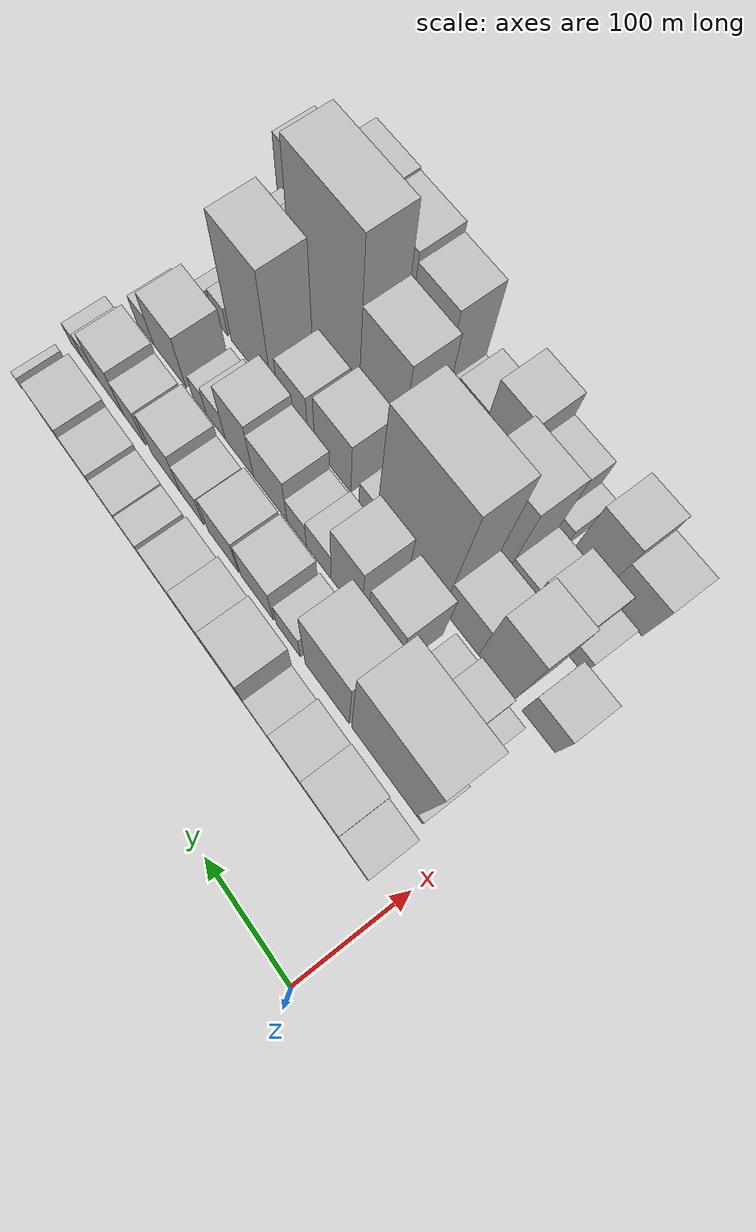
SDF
<sdf version="1.6">
 <world name="default">
  <model name="building_29">
   <static>1</static>
   <pose>100.0000 40.2468 0 0.000000 0.000000 0.000000</pose>
   <link name="link">
    <pose>0 0 30.00 0 0 0</pose>
    <collision name="collision"><geometry><box><size>40.0000 31.6329 60.0000</size></box></geometry></collision>
    <visual name="visual">
     <cast_shadows>0</cast_shadows>
     <geometry><box><size>40.0000 31.6329 60.0000</size></box></geometry>
     <material>
      <script>
       <uri>model://HANNAS_wall/materials/scripts</uri>
       <uri>model://HANNAS_wall/materials/textures</uri>
       <name>vrc/HANNAS_wall</name>
      </script>
     </material>
    </visual>
   </link>
  </model>
  <model name="building_30">
   <static>1</static>
   <pose>100.0000 76.3319 0 0.000000 0.000000 0.000000</pose>
   <link name="link">
    <pose>0 0 37.50 0 0 0</pose>
    <collision name="collision"><geometry><box><size>40.0000 40.5372 75.0000</size></box></geometry></collision>
    <visual name="visual">
     <cast_shadows>0</cast_shadows>
     <geometry><box><size>40.0000 40.5372 75.0000</size></box></geometry>
     <material>
      <script>
       <uri>model://HANNAS_wall/materials/scripts</uri>
       <uri>model://HANNAS_wall/materials/textures</uri>
       <name>vrc/HANNAS_wall</name>
      </script>
     </material>
    </visual>
   </link>
  </model>
  <model name="building_31">
   <static>1</static>
   <pose>100.0000 114.6214 0 0.000000 0.000000 0.000000</pose>
   <link name="link">
    <pose>0 0 34.50 0 0 0</pose>
    <collision name="collision"><geometry><box><size>40.0000 36.0418 69.0000</size></box></geometry></collision>
    <visual name="visual">
     <cast_shadows>0</cast_shadows>
     <geometry><box><size>40.0000 36.0418 69.0000</size></box></geometry>
     <material>
      <script>
       <uri>model://HANNAS_wall/materials/scripts</uri>
       <uri>model://HANNAS_wall/materials/textures</uri>
       <name>vrc/HANNAS_wall</name>
      </script>
     </material>
    </visual>
   </link>
  </model>
  <model name="building_32">
   <static>1</static>
   <pose>100.0000 147.8594 0 0.000000 0.000000 0.000000</pose>
   <link name="link">
    <pose>0 0 25.50 0 0 0</pose>
    <collision name="collision"><geometry><box><size>40.0000 30.4344 51.0000</size></box></geometry></collision>
    <visual name="visual">
     <cast_shadows>0</cast_shadows>
     <geometry><box><size>40.0000 30.4344 51.0000</size></box></geometry>
     <material>
      <script>
       <uri>model://HANNAS_wall/materials/scripts</uri>
       <uri>model://HANNAS_wall/materials/textures</uri>
       <name>vrc/HANNAS_wall</name>
      </script>
     </material>
    </visual>
   </link>
  </model>
  <model name="building_33">
   <static>1</static>
   <pose>100.0000 184.2097 0 0.000000 0.000000 0.000000</pose>
   <link name="link">
    <pose>0 0 54.00 0 0 0</pose>
    <collision name="collision"><geometry><box><size>40.0000 42.2661 108.0000</size></box></geometry></collision>
    <visual name="visual">
     <cast_shadows>0</cast_shadows>
     <geometry><box><size>40.0000 42.2661 108.0000</size></box></geometry>
     <material>
      <script>
       <uri>model://HANNAS_wall/materials/scripts</uri>
       <uri>model://HANNAS_wall/materials/textures</uri>
       <name>vrc/HANNAS_wall</name>
      </script>
     </material>
    </visual>
   </link>
  </model>
  <model name="building_34">
   <static>1</static>
   <pose>100.0000 223.7622 0 0.000000 0.000000 0.000000</pose>
   <link name="link">
    <pose>0 0 46.50 0 0 0</pose>
    <collision name="collision"><geometry><box><size>40.0000 36.8390 93.0000</size></box></geometry></collision>
    <visual name="visual">
     <cast_shadows>0</cast_shadows>
     <geometry><box><size>40.0000 36.8390 93.0000</size></box></geometry>
     <material>
      <script>
       <uri>model://HANNAS_wall/materials/scripts</uri>
       <uri>model://HANNAS_wall/materials/textures</uri>
       <name>vrc/HANNAS_wall</name>
      </script>
     </material>
    </visual>
   </link>
  </model>
  <model name="building_35">
   <static>1</static>
   <pose>100.0000 263.3432 0 0.000000 0.000000 0.000000</pose>
   <link name="link">
    <pose>0 0 36.00 0 0 0</pose>
    <collision name="collision"><geometry><box><size>40.0000 42.3230 72.0000</size></box></geometry></collision>
    <visual name="visual">
     <cast_shadows>0</cast_shadows>
     <geometry><box><size>40.0000 42.3230 72.0000</size></box></geometry>
     <material>
      <script>
       <uri>model://HANNAS_wall/materials/scripts</uri>
       <uri>model://HANNAS_wall/materials/textures</uri>
       <name>vrc/HANNAS_wall</name>
      </script>
     </material>
    </visual>
   </link>
  </model>
  <model name="building_36">
   <static>1</static>
   <pose>100.0000 289.1036 0 0.000000 0.000000 0.000000</pose>
   <link name="link">
    <pose>0 0 10.50 0 0 0</pose>
    <collision name="collision"><geometry><box><size>40.0000 9.1977 21.0000</size></box></geometry></collision>
    <visual name="visual">
     <cast_shadows>0</cast_shadows>
     <geometry><box><size>40.0000 9.1977 21.0000</size></box></geometry>
     <material>
      <script>
       <uri>model://HANNAS_wall/materials/scripts</uri>
       <uri>model://HANNAS_wall/materials/textures</uri>
       <name>vrc/HANNAS_wall</name>
      </script>
     </material>
    </visual>
   </link>
  </model>
  <model name="building_37">
   <static>1</static>
   <pose>100.0000 307.2518 0 0.000000 0.000000 0.000000</pose>
   <link name="link">
    <pose>0 0 27.00 0 0 0</pose>
    <collision name="collision"><geometry><box><size>40.0000 27.0988 54.0000</size></box></geometry></collision>
    <visual name="visual">
     <cast_shadows>0</cast_shadows>
     <geometry><box><size>40.0000 27.0988 54.0000</size></box></geometry>
     <material>
      <script>
       <uri>model://HANNAS_wall/materials/scripts</uri>
       <uri>model://HANNAS_wall/materials/textures</uri>
       <name>vrc/HANNAS_wall</name>
      </script>
     </material>
    </visual>
   </link>
  </model>
  <model name="building_38">
   <static>1</static>
   <pose>100.0000 336.7507 0 0.000000 0.000000 0.000000</pose>
   <link name="link">
    <pose>0 0 28.50 0 0 0</pose>
    <collision name="collision"><geometry><box><size>40.0000 31.8990 57.0000</size></box></geometry></collision>
    <visual name="visual">
     <cast_shadows>0</cast_shadows>
     <geometry><box><size>40.0000 31.8990 57.0000</size></box></geometry>
     <material>
      <script>
       <uri>model://HANNAS_wall/materials/scripts</uri>
       <uri>model://HANNAS_wall/materials/textures</uri>
       <name>vrc/HANNAS_wall</name>
      </script>
     </material>
    </visual>
   </link>
  </model>
  <model name="building_39">
   <static>1</static>
   <pose>100.0000 370.7542 0 0.000000 0.000000 0.000000</pose>
   <link name="link">
    <pose>0 0 33.00 0 0 0</pose>
    <collision name="collision"><geometry><box><size>40.0000 36.1079 66.0000</size></box></geometry></collision>
    <visual name="visual">
     <cast_shadows>0</cast_shadows>
     <geometry><box><size>40.0000 36.1079 66.0000</size></box></geometry>
     <material>
      <script>
       <uri>model://HANNAS_wall/materials/scripts</uri>
       <uri>model://HANNAS_wall/materials/textures</uri>
       <name>vrc/HANNAS_wall</name>
      </script>
     </material>
    </visual>
   </link>
  </model>
  <model name="building_40">
   <static>1</static>
   <pose>100.0000 410.9158 0 0.000000 0.000000 0.000000</pose>
   <link name="link">
    <pose>0 0 39.00 0 0 0</pose>
    <collision name="collision"><geometry><box><size>40.0000 44.2153 78.0000</size></box></geometry></collision>
    <visual name="visual">
     <cast_shadows>0</cast_shadows>
     <geometry><box><size>40.0000 44.2153 78.0000</size></box></geometry>
     <material>
      <script>
       <uri>model://HANNAS_wall/materials/scripts</uri>
       <uri>model://HANNAS_wall/materials/textures</uri>
       <name>vrc/HANNAS_wall</name>
      </script>
     </material>
    </visual>
   </link>
  </model>
  <model name="building_41">
   <static>1</static>
   <pose>100.0000 477.3206 0 0.000000 0.000000 0.000000</pose>
   <link name="link">
    <pose>0 0 9.00 0 0 0</pose>
    <collision name="collision"><geometry><box><size>40.0000 7.5315 18.0000</size></box></geometry></collision>
    <visual name="visual">
     <cast_shadows>0</cast_shadows>
     <geometry><box><size>40.0000 7.5315 18.0000</size></box></geometry>
     <material>
      <script>
       <uri>model://HANNAS_wall/materials/scripts</uri>
       <uri>model://HANNAS_wall/materials/textures</uri>
       <name>vrc/HANNAS_wall</name>
      </script>
     </material>
    </visual>
   </link>
  </model>
  <model name="building_77">
   <static>1</static>
   <pose>152.0000 33.0837 0 0.000000 0.000000 0.000000</pose>
   <link name="link">
    <pose>0 0 7.50 0 0 0</pose>
    <collision name="collision"><geometry><box><size>40.0000 6.6672 15.0000</size></box></geometry></collision>
    <visual name="visual">
     <cast_shadows>0</cast_shadows>
     <geometry><box><size>40.0000 6.6672 15.0000</size></box></geometry>
     <material>
      <script>
       <uri>model://HANNAS_wall/materials/scripts</uri>
       <uri>model://HANNAS_wall/materials/textures</uri>
       <name>vrc/HANNAS_wall</name>
      </script>
     </material>
    </visual>
   </link>
  </model>
  <model name="building_78">
   <static>1</static>
   <pose>152.0000 73.7031 0 0.000000 0.000000 0.000000</pose>
   <link name="link">
    <pose>0 0 103.50 0 0 0</pose>
    <collision name="collision"><geometry><box><size>40.0000 74.5717 207.0000</size></box></geometry></collision>
    <visual name="visual">
     <cast_shadows>0</cast_shadows>
     <geometry><box><size>40.0000 74.5717 207.0000</size></box></geometry>
     <material>
      <script>
       <uri>model://HANNAS_wall/materials/scripts</uri>
       <uri>model://HANNAS_wall/materials/textures</uri>
       <name>vrc/HANNAS_wall</name>
      </script>
     </material>
    </visual>
   </link>
  </model>
  <model name="building_79">
   <static>1</static>
   <pose>152.0000 140.3286 0 0.000000 0.000000 0.000000</pose>
   <link name="link">
    <pose>0 0 75.00 0 0 0</pose>
    <collision name="collision"><geometry><box><size>40.0000 52.6793 150.0000</size></box></geometry></collision>
    <visual name="visual">
     <cast_shadows>0</cast_shadows>
     <geometry><box><size>40.0000 52.6793 150.0000</size></box></geometry>
     <material>
      <script>
       <uri>model://HANNAS_wall/materials/scripts</uri>
       <uri>model://HANNAS_wall/materials/textures</uri>
       <name>vrc/HANNAS_wall</name>
      </script>
     </material>
    </visual>
   </link>
  </model>
  <model name="building_80">
   <static>1</static>
   <pose>152.0000 187.3229 0 0.000000 0.000000 0.000000</pose>
   <link name="link">
    <pose>0 0 28.50 0 0 0</pose>
    <collision name="collision"><geometry><box><size>40.0000 29.3093 57.0000</size></box></geometry></collision>
    <visual name="visual">
     <cast_shadows>0</cast_shadows>
     <geometry><box><size>40.0000 29.3093 57.0000</size></box></geometry>
     <material>
      <script>
       <uri>model://HANNAS_wall/materials/scripts</uri>
       <uri>model://HANNAS_wall/materials/textures</uri>
       <name>vrc/HANNAS_wall</name>
      </script>
     </material>
    </visual>
   </link>
  </model>
  <model name="building_81">
   <static>1</static>
   <pose>152.0000 226.6358 0 0.000000 0.000000 0.000000</pose>
   <link name="link">
    <pose>0 0 37.50 0 0 0</pose>
    <collision name="collision"><geometry><box><size>40.0000 41.3163 75.0000</size></box></geometry></collision>
    <visual name="visual">
     <cast_shadows>0</cast_shadows>
     <geometry><box><size>40.0000 41.3163 75.0000</size></box></geometry>
     <material>
      <script>
       <uri>model://HANNAS_wall/materials/scripts</uri>
       <uri>model://HANNAS_wall/materials/textures</uri>
       <name>vrc/HANNAS_wall</name>
      </script>
     </material>
    </visual>
   </link>
  </model>
  <model name="building_82">
   <static>1</static>
   <pose>152.0000 270.3311 0 0.000000 0.000000 0.000000</pose>
   <link name="link">
    <pose>0 0 36.00 0 0 0</pose>
    <collision name="collision"><geometry><box><size>40.0000 40.0743 72.0000</size></box></geometry></collision>
    <visual name="visual">
     <cast_shadows>0</cast_shadows>
     <geometry><box><size>40.0000 40.0743 72.0000</size></box></geometry>
     <material>
      <script>
       <uri>model://HANNAS_wall/materials/scripts</uri>
       <uri>model://HANNAS_wall/materials/textures</uri>
       <name>vrc/HANNAS_wall</name>
      </script>
     </material>
    </visual>
   </link>
  </model>
  <model name="building_83">
   <static>1</static>
   <pose>152.0000 311.8385 0 0.000000 0.000000 0.000000</pose>
   <link name="link">
    <pose>0 0 28.50 0 0 0</pose>
    <collision name="collision"><geometry><box><size>40.0000 30.9406 57.0000</size></box></geometry></collision>
    <visual name="visual">
     <cast_shadows>0</cast_shadows>
     <geometry><box><size>40.0000 30.9406 57.0000</size></box></geometry>
     <material>
      <script>
       <uri>model://HANNAS_wall/materials/scripts</uri>
       <uri>model://HANNAS_wall/materials/textures</uri>
       <name>vrc/HANNAS_wall</name>
      </script>
     </material>
    </visual>
   </link>
  </model>
  <model name="building_84">
   <static>1</static>
   <pose>152.0000 347.2280 0 0.000000 0.000000 0.000000</pose>
   <link name="link">
    <pose>0 0 37.50 0 0 0</pose>
    <collision name="collision"><geometry><box><size>40.0000 39.8383 75.0000</size></box></geometry></collision>
    <visual name="visual">
     <cast_shadows>0</cast_shadows>
     <geometry><box><size>40.0000 39.8383 75.0000</size></box></geometry>
     <material>
      <script>
       <uri>model://HANNAS_wall/materials/scripts</uri>
       <uri>model://HANNAS_wall/materials/textures</uri>
       <name>vrc/HANNAS_wall</name>
      </script>
     </material>
    </visual>
   </link>
  </model>
  <model name="building_85">
   <static>1</static>
   <pose>152.0000 391.4638 0 0.000000 0.000000 0.000000</pose>
   <link name="link">
    <pose>0 0 30.00 0 0 0</pose>
    <collision name="collision"><geometry><box><size>40.0000 30.6335 60.0000</size></box></geometry></collision>
    <visual name="visual">
     <cast_shadows>0</cast_shadows>
     <geometry><box><size>40.0000 30.6335 60.0000</size></box></geometry>
     <material>
      <script>
       <uri>model://HANNAS_wall/materials/scripts</uri>
       <uri>model://HANNAS_wall/materials/textures</uri>
       <name>vrc/HANNAS_wall</name>
      </script>
     </material>
    </visual>
   </link>
  </model>
  <model name="building_86">
   <static>1</static>
   <pose>152.0000 426.1451 0 0.000000 0.000000 0.000000</pose>
   <link name="link">
    <pose>0 0 37.50 0 0 0</pose>
    <collision name="collision"><geometry><box><size>40.0000 38.7290 75.0000</size></box></geometry></collision>
    <visual name="visual">
     <cast_shadows>0</cast_shadows>
     <geometry><box><size>40.0000 38.7290 75.0000</size></box></geometry>
     <material>
      <script>
       <uri>model://HANNAS_wall/materials/scripts</uri>
       <uri>model://HANNAS_wall/materials/textures</uri>
       <name>vrc/HANNAS_wall</name>
      </script>
     </material>
    </visual>
   </link>
  </model>
  <model name="building_87">
   <static>1</static>
   <pose>152.0000 456.1907 0 0.000000 0.000000 0.000000</pose>
   <link name="link">
    <pose>0 0 21.00 0 0 0</pose>
    <collision name="collision"><geometry><box><size>40.0000 21.3623 42.0000</size></box></geometry></collision>
    <visual name="visual">
     <cast_shadows>0</cast_shadows>
     <geometry><box><size>40.0000 21.3623 42.0000</size></box></geometry>
     <material>
      <script>
       <uri>model://HANNAS_wall/materials/scripts</uri>
       <uri>model://HANNAS_wall/materials/textures</uri>
       <name>vrc/HANNAS_wall</name>
      </script>
     </material>
    </visual>
   </link>
  </model>
  <model name="building_88">
   <static>1</static>
   <pose>152.0000 475.7826 0 0.000000 0.000000 0.000000</pose>
   <link name="link">
    <pose>0 0 16.50 0 0 0</pose>
    <collision name="collision"><geometry><box><size>40.0000 17.8215 33.0000</size></box></geometry></collision>
    <visual name="visual">
     <cast_shadows>0</cast_shadows>
     <geometry><box><size>40.0000 17.8215 33.0000</size></box></geometry>
     <material>
      <script>
       <uri>model://HANNAS_wall/materials/scripts</uri>
       <uri>model://HANNAS_wall/materials/textures</uri>
       <name>vrc/HANNAS_wall</name>
      </script>
     </material>
    </visual>
   </link>
  </model>
  <model name="building_124">
   <static>1</static>
   <pose>204.0000 46.8341 0 0.000000 0.000000 0.000000</pose>
   <link name="link">
    <pose>0 0 15.00 0 0 0</pose>
    <collision name="collision"><geometry><box><size>40.0000 17.7865 30.0000</size></box></geometry></collision>
    <visual name="visual">
     <cast_shadows>0</cast_shadows>
     <geometry><box><size>40.0000 17.7865 30.0000</size></box></geometry>
     <material>
      <script>
       <uri>model://HANNAS_wall/materials/scripts</uri>
       <uri>model://HANNAS_wall/materials/textures</uri>
       <name>vrc/HANNAS_wall</name>
      </script>
     </material>
    </visual>
   </link>
  </model>
  <model name="building_125">
   <static>1</static>
   <pose>204.0000 73.4161 0 0.000000 0.000000 0.000000</pose>
   <link name="link">
    <pose>0 0 30.00 0 0 0</pose>
    <collision name="collision"><geometry><box><size>40.0000 35.3775 60.0000</size></box></geometry></collision>
    <visual name="visual">
     <cast_shadows>0</cast_shadows>
     <geometry><box><size>40.0000 35.3775 60.0000</size></box></geometry>
     <material>
      <script>
       <uri>model://HANNAS_wall/materials/scripts</uri>
       <uri>model://HANNAS_wall/materials/textures</uri>
       <name>vrc/HANNAS_wall</name>
      </script>
     </material>
    </visual>
   </link>
  </model>
  <model name="building_126">
   <static>1</static>
   <pose>204.0000 103.3970 0 0.000000 0.000000 0.000000</pose>
   <link name="link">
    <pose>0 0 21.00 0 0 0</pose>
    <collision name="collision"><geometry><box><size>40.0000 24.5842 42.0000</size></box></geometry></collision>
    <visual name="visual">
     <cast_shadows>0</cast_shadows>
     <geometry><box><size>40.0000 24.5842 42.0000</size></box></geometry>
     <material>
      <script>
       <uri>model://HANNAS_wall/materials/scripts</uri>
       <uri>model://HANNAS_wall/materials/textures</uri>
       <name>vrc/HANNAS_wall</name>
      </script>
     </material>
    </visual>
   </link>
  </model>
  <model name="building_127">
   <static>1</static>
   <pose>204.0000 143.6898 0 0.000000 0.000000 0.000000</pose>
   <link name="link">
    <pose>0 0 52.50 0 0 0</pose>
    <collision name="collision"><geometry><box><size>40.0000 38.0013 105.0000</size></box></geometry></collision>
    <visual name="visual">
     <cast_shadows>0</cast_shadows>
     <geometry><box><size>40.0000 38.0013 105.0000</size></box></geometry>
     <material>
      <script>
       <uri>model://HANNAS_wall/materials/scripts</uri>
       <uri>model://HANNAS_wall/materials/textures</uri>
       <name>vrc/HANNAS_wall</name>
      </script>
     </material>
    </visual>
   </link>
  </model>
  <model name="building_128">
   <static>1</static>
   <pose>204.0000 187.9292 0 0.000000 0.000000 0.000000</pose>
   <link name="link">
    <pose>0 0 60.00 0 0 0</pose>
    <collision name="collision"><geometry><box><size>40.0000 36.4775 120.0000</size></box></geometry></collision>
    <visual name="visual">
     <cast_shadows>0</cast_shadows>
     <geometry><box><size>40.0000 36.4775 120.0000</size></box></geometry>
     <material>
      <script>
       <uri>model://HANNAS_wall/materials/scripts</uri>
       <uri>model://HANNAS_wall/materials/textures</uri>
       <name>vrc/HANNAS_wall</name>
      </script>
     </material>
    </visual>
   </link>
  </model>
  <model name="building_129">
   <static>1</static>
   <pose>204.0000 221.6632 0 0.000000 0.000000 0.000000</pose>
   <link name="link">
    <pose>0 0 28.50 0 0 0</pose>
    <collision name="collision"><geometry><box><size>40.0000 30.9905 57.0000</size></box></geometry></collision>
    <visual name="visual">
     <cast_shadows>0</cast_shadows>
     <geometry><box><size>40.0000 30.9905 57.0000</size></box></geometry>
     <material>
      <script>
       <uri>model://HANNAS_wall/materials/scripts</uri>
       <uri>model://HANNAS_wall/materials/textures</uri>
       <name>vrc/HANNAS_wall</name>
      </script>
     </material>
    </visual>
   </link>
  </model>
  <model name="building_130">
   <static>1</static>
   <pose>204.0000 249.5951 0 0.000000 0.000000 0.000000</pose>
   <link name="link">
    <pose>0 0 24.00 0 0 0</pose>
    <collision name="collision"><geometry><box><size>40.0000 24.8734 48.0000</size></box></geometry></collision>
    <visual name="visual">
     <cast_shadows>0</cast_shadows>
     <geometry><box><size>40.0000 24.8734 48.0000</size></box></geometry>
     <material>
      <script>
       <uri>model://HANNAS_wall/materials/scripts</uri>
       <uri>model://HANNAS_wall/materials/textures</uri>
       <name>vrc/HANNAS_wall</name>
      </script>
     </material>
    </visual>
   </link>
  </model>
  <model name="building_131">
   <static>1</static>
   <pose>204.0000 283.9819 0 0.000000 0.000000 0.000000</pose>
   <link name="link">
    <pose>0 0 40.50 0 0 0</pose>
    <collision name="collision"><geometry><box><size>40.0000 43.9001 81.0000</size></box></geometry></collision>
    <visual name="visual">
     <cast_shadows>0</cast_shadows>
     <geometry><box><size>40.0000 43.9001 81.0000</size></box></geometry>
     <material>
      <script>
       <uri>model://HANNAS_wall/materials/scripts</uri>
       <uri>model://HANNAS_wall/materials/textures</uri>
       <name>vrc/HANNAS_wall</name>
      </script>
     </material>
    </visual>
   </link>
  </model>
  <model name="building_132">
   <static>1</static>
   <pose>204.0000 324.8077 0 0.000000 0.000000 0.000000</pose>
   <link name="link">
    <pose>0 0 48.00 0 0 0</pose>
    <collision name="collision"><geometry><box><size>40.0000 37.7515 96.0000</size></box></geometry></collision>
    <visual name="visual">
     <cast_shadows>0</cast_shadows>
     <geometry><box><size>40.0000 37.7515 96.0000</size></box></geometry>
     <material>
      <script>
       <uri>model://HANNAS_wall/materials/scripts</uri>
       <uri>model://HANNAS_wall/materials/textures</uri>
       <name>vrc/HANNAS_wall</name>
      </script>
     </material>
    </visual>
   </link>
  </model>
  <model name="building_133">
   <static>1</static>
   <pose>204.0000 356.7998 0 0.000000 0.000000 0.000000</pose>
   <link name="link">
    <pose>0 0 24.00 0 0 0</pose>
    <collision name="collision"><geometry><box><size>40.0000 26.2327 48.0000</size></box></geometry></collision>
    <visual name="visual">
     <cast_shadows>0</cast_shadows>
     <geometry><box><size>40.0000 26.2327 48.0000</size></box></geometry>
     <material>
      <script>
       <uri>model://HANNAS_wall/materials/scripts</uri>
       <uri>model://HANNAS_wall/materials/textures</uri>
       <name>vrc/HANNAS_wall</name>
      </script>
     </material>
    </visual>
   </link>
  </model>
  <model name="building_134">
   <static>1</static>
   <pose>204.0000 379.4706 0 0.000000 0.000000 0.000000</pose>
   <link name="link">
    <pose>0 0 18.00 0 0 0</pose>
    <collision name="collision"><geometry><box><size>40.0000 19.1090 36.0000</size></box></geometry></collision>
    <visual name="visual">
     <cast_shadows>0</cast_shadows>
     <geometry><box><size>40.0000 19.1090 36.0000</size></box></geometry>
     <material>
      <script>
       <uri>model://HANNAS_wall/materials/scripts</uri>
       <uri>model://HANNAS_wall/materials/textures</uri>
       <name>vrc/HANNAS_wall</name>
      </script>
     </material>
    </visual>
   </link>
  </model>
  <model name="building_135">
   <static>1</static>
   <pose>204.0000 421.2798 0 0.000000 0.000000 0.000000</pose>
   <link name="link">
    <pose>0 0 40.50 0 0 0</pose>
    <collision name="collision"><geometry><box><size>40.0000 46.5094 81.0000</size></box></geometry></collision>
    <visual name="visual">
     <cast_shadows>0</cast_shadows>
     <geometry><box><size>40.0000 46.5094 81.0000</size></box></geometry>
     <material>
      <script>
       <uri>model://HANNAS_wall/materials/scripts</uri>
       <uri>model://HANNAS_wall/materials/textures</uri>
       <name>vrc/HANNAS_wall</name>
      </script>
     </material>
    </visual>
   </link>
  </model>
  <model name="building_136">
   <static>1</static>
   <pose>204.0000 456.9595 0 0.000000 0.000000 0.000000</pose>
   <link name="link">
    <pose>0 0 21.00 0 0 0</pose>
    <collision name="collision"><geometry><box><size>40.0000 24.8499 42.0000</size></box></geometry></collision>
    <visual name="visual">
     <cast_shadows>0</cast_shadows>
     <geometry><box><size>40.0000 24.8499 42.0000</size></box></geometry>
     <material>
      <script>
       <uri>model://HANNAS_wall/materials/scripts</uri>
       <uri>model://HANNAS_wall/materials/textures</uri>
       <name>vrc/HANNAS_wall</name>
      </script>
     </material>
    </visual>
   </link>
  </model>
  <model name="building_170">
   <static>1</static>
   <pose>256.0000 30.5510 0 0.000000 0.000000 0.000000</pose>
   <link name="link">
    <pose>0 0 31.50 0 0 0</pose>
    <collision name="collision"><geometry><box><size>40.0000 36.4296 63.0000</size></box></geometry></collision>
    <visual name="visual">
     <cast_shadows>0</cast_shadows>
     <geometry><box><size>40.0000 36.4296 63.0000</size></box></geometry>
     <material>
      <script>
       <uri>model://HANNAS_wall/materials/scripts</uri>
       <uri>model://HANNAS_wall/materials/textures</uri>
       <name>vrc/HANNAS_wall</name>
      </script>
     </material>
    </visual>
   </link>
  </model>
  <model name="building_171">
   <static>1</static>
   <pose>256.0000 77.8246 0 0.000000 0.000000 0.000000</pose>
   <link name="link">
    <pose>0 0 64.50 0 0 0</pose>
    <collision name="collision"><geometry><box><size>40.0000 40.1176 129.0000</size></box></geometry></collision>
    <visual name="visual">
     <cast_shadows>0</cast_shadows>
     <geometry><box><size>40.0000 40.1176 129.0000</size></box></geometry>
     <material>
      <script>
       <uri>model://HANNAS_wall/materials/scripts</uri>
       <uri>model://HANNAS_wall/materials/textures</uri>
       <name>vrc/HANNAS_wall</name>
      </script>
     </material>
    </visual>
   </link>
  </model>
  <model name="building_172">
   <static>1</static>
   <pose>256.0000 118.3505 0 0.000000 0.000000 0.000000</pose>
   <link name="link">
    <pose>0 0 37.50 0 0 0</pose>
    <collision name="collision"><geometry><box><size>40.0000 40.9343 75.0000</size></box></geometry></collision>
    <visual name="visual">
     <cast_shadows>0</cast_shadows>
     <geometry><box><size>40.0000 40.9343 75.0000</size></box></geometry>
     <material>
      <script>
       <uri>model://HANNAS_wall/materials/scripts</uri>
       <uri>model://HANNAS_wall/materials/textures</uri>
       <name>vrc/HANNAS_wall</name>
      </script>
     </material>
    </visual>
   </link>
  </model>
  <model name="building_173">
   <static>1</static>
   <pose>256.0000 179.6236 0 0.000000 0.000000 0.000000</pose>
   <link name="link">
    <pose>0 0 109.50 0 0 0</pose>
    <collision name="collision"><geometry><box><size>40.0000 81.6119 219.0000</size></box></geometry></collision>
    <visual name="visual">
     <cast_shadows>0</cast_shadows>
     <geometry><box><size>40.0000 81.6119 219.0000</size></box></geometry>
     <material>
      <script>
       <uri>model://HANNAS_wall/materials/scripts</uri>
       <uri>model://HANNAS_wall/materials/textures</uri>
       <name>vrc/HANNAS_wall</name>
      </script>
     </material>
    </visual>
   </link>
  </model>
  <model name="building_174">
   <static>1</static>
   <pose>256.0000 231.1849 0 0.000000 0.000000 0.000000</pose>
   <link name="link">
    <pose>0 0 21.00 0 0 0</pose>
    <collision name="collision"><geometry><box><size>40.0000 21.5108 42.0000</size></box></geometry></collision>
    <visual name="visual">
     <cast_shadows>0</cast_shadows>
     <geometry><box><size>40.0000 21.5108 42.0000</size></box></geometry>
     <material>
      <script>
       <uri>model://HANNAS_wall/materials/scripts</uri>
       <uri>model://HANNAS_wall/materials/textures</uri>
       <name>vrc/HANNAS_wall</name>
      </script>
     </material>
    </visual>
   </link>
  </model>
  <model name="building_175">
   <static>1</static>
   <pose>256.0000 275.0761 0 0.000000 0.000000 0.000000</pose>
   <link name="link">
    <pose>0 0 45.00 0 0 0</pose>
    <collision name="collision"><geometry><box><size>40.0000 46.2716 90.0000</size></box></geometry></collision>
    <visual name="visual">
     <cast_shadows>0</cast_shadows>
     <geometry><box><size>40.0000 46.2716 90.0000</size></box></geometry>
     <material>
      <script>
       <uri>model://HANNAS_wall/materials/scripts</uri>
       <uri>model://HANNAS_wall/materials/textures</uri>
       <name>vrc/HANNAS_wall</name>
      </script>
     </material>
    </visual>
   </link>
  </model>
  <model name="building_176">
   <static>1</static>
   <pose>256.0000 326.7029 0 0.000000 0.000000 0.000000</pose>
   <link name="link">
    <pose>0 0 36.00 0 0 0</pose>
    <collision name="collision"><geometry><box><size>40.0000 38.9820 72.0000</size></box></geometry></collision>
    <visual name="visual">
     <cast_shadows>0</cast_shadows>
     <geometry><box><size>40.0000 38.9820 72.0000</size></box></geometry>
     <material>
      <script>
       <uri>model://HANNAS_wall/materials/scripts</uri>
       <uri>model://HANNAS_wall/materials/textures</uri>
       <name>vrc/HANNAS_wall</name>
      </script>
     </material>
    </visual>
   </link>
  </model>
  <model name="building_177">
   <static>1</static>
   <pose>256.0000 383.2286 0 0.000000 0.000000 0.000000</pose>
   <link name="link">
    <pose>0 0 88.50 0 0 0</pose>
    <collision name="collision"><geometry><box><size>40.0000 56.0694 177.0000</size></box></geometry></collision>
    <visual name="visual">
     <cast_shadows>0</cast_shadows>
     <geometry><box><size>40.0000 56.0694 177.0000</size></box></geometry>
     <material>
      <script>
       <uri>model://HANNAS_wall/materials/scripts</uri>
       <uri>model://HANNAS_wall/materials/textures</uri>
       <name>vrc/HANNAS_wall</name>
      </script>
     </material>
    </visual>
   </link>
  </model>
  <model name="building_178">
   <static>1</static>
   <pose>256.0000 427.2331 0 0.000000 0.000000 0.000000</pose>
   <link name="link">
    <pose>0 0 21.00 0 0 0</pose>
    <collision name="collision"><geometry><box><size>40.0000 21.9396 42.0000</size></box></geometry></collision>
    <visual name="visual">
     <cast_shadows>0</cast_shadows>
     <geometry><box><size>40.0000 21.9396 42.0000</size></box></geometry>
     <material>
      <script>
       <uri>model://HANNAS_wall/materials/scripts</uri>
       <uri>model://HANNAS_wall/materials/textures</uri>
       <name>vrc/HANNAS_wall</name>
      </script>
     </material>
    </visual>
   </link>
  </model>
  <model name="building_179">
   <static>1</static>
   <pose>256.0000 441.8886 0 0.000000 0.000000 0.000000</pose>
   <link name="link">
    <pose>0 0 9.00 0 0 0</pose>
    <collision name="collision"><geometry><box><size>40.0000 7.3712 18.0000</size></box></geometry></collision>
    <visual name="visual">
     <cast_shadows>0</cast_shadows>
     <geometry><box><size>40.0000 7.3712 18.0000</size></box></geometry>
     <material>
      <script>
       <uri>model://HANNAS_wall/materials/scripts</uri>
       <uri>model://HANNAS_wall/materials/textures</uri>
       <name>vrc/HANNAS_wall</name>
      </script>
     </material>
    </visual>
   </link>
  </model>
  <model name="building_180">
   <static>1</static>
   <pose>256.0000 452.0042 0 0.000000 0.000000 0.000000</pose>
   <link name="link">
    <pose>0 0 13.50 0 0 0</pose>
    <collision name="collision"><geometry><box><size>40.0000 12.8602 27.0000</size></box></geometry></collision>
    <visual name="visual">
     <cast_shadows>0</cast_shadows>
     <geometry><box><size>40.0000 12.8602 27.0000</size></box></geometry>
     <material>
      <script>
       <uri>model://HANNAS_wall/materials/scripts</uri>
       <uri>model://HANNAS_wall/materials/textures</uri>
       <name>vrc/HANNAS_wall</name>
      </script>
     </material>
    </visual>
   </link>
  </model>
  <model name="building_216">
   <static>1</static>
   <pose>308.0000 51.8596 0 0.000000 0.000000 0.000000</pose>
   <link name="link">
    <pose>0 0 18.00 0 0 0</pose>
    <collision name="collision"><geometry><box><size>40.0000 18.5583 36.0000</size></box></geometry></collision>
    <visual name="visual">
     <cast_shadows>0</cast_shadows>
     <geometry><box><size>40.0000 18.5583 36.0000</size></box></geometry>
     <material>
      <script>
       <uri>model://HANNAS_wall/materials/scripts</uri>
       <uri>model://HANNAS_wall/materials/textures</uri>
       <name>vrc/HANNAS_wall</name>
      </script>
     </material>
    </visual>
   </link>
  </model>
  <model name="building_217">
   <static>1</static>
   <pose>308.0000 82.4588 0 0.000000 0.000000 0.000000</pose>
   <link name="link">
    <pose>0 0 36.00 0 0 0</pose>
    <collision name="collision"><geometry><box><size>40.0000 42.6401 72.0000</size></box></geometry></collision>
    <visual name="visual">
     <cast_shadows>0</cast_shadows>
     <geometry><box><size>40.0000 42.6401 72.0000</size></box></geometry>
     <material>
      <script>
       <uri>model://HANNAS_wall/materials/scripts</uri>
       <uri>model://HANNAS_wall/materials/textures</uri>
       <name>vrc/HANNAS_wall</name>
      </script>
     </material>
    </visual>
   </link>
  </model>
  <model name="building_218">
   <static>1</static>
   <pose>308.0000 117.6793 0 0.000000 0.000000 0.000000</pose>
   <link name="link">
    <pose>0 0 24.00 0 0 0</pose>
    <collision name="collision"><geometry><box><size>40.0000 27.8010 48.0000</size></box></geometry></collision>
    <visual name="visual">
     <cast_shadows>0</cast_shadows>
     <geometry><box><size>40.0000 27.8010 48.0000</size></box></geometry>
     <material>
      <script>
       <uri>model://HANNAS_wall/materials/scripts</uri>
       <uri>model://HANNAS_wall/materials/textures</uri>
       <name>vrc/HANNAS_wall</name>
      </script>
     </material>
    </visual>
   </link>
  </model>
  <model name="building_219">
   <static>1</static>
   <pose>308.0000 158.0275 0 0.000000 0.000000 0.000000</pose>
   <link name="link">
    <pose>0 0 72.00 0 0 0</pose>
    <collision name="collision"><geometry><box><size>40.0000 52.8954 144.0000</size></box></geometry></collision>
    <visual name="visual">
     <cast_shadows>0</cast_shadows>
     <geometry><box><size>40.0000 52.8954 144.0000</size></box></geometry>
     <material>
      <script>
       <uri>model://HANNAS_wall/materials/scripts</uri>
       <uri>model://HANNAS_wall/materials/textures</uri>
       <name>vrc/HANNAS_wall</name>
      </script>
     </material>
    </visual>
   </link>
  </model>
  <model name="building_220">
   <static>1</static>
   <pose>308.0000 191.2032 0 0.000000 0.000000 0.000000</pose>
   <link name="link">
    <pose>0 0 13.50 0 0 0</pose>
    <collision name="collision"><geometry><box><size>40.0000 13.4560 27.0000</size></box></geometry></collision>
    <visual name="visual">
     <cast_shadows>0</cast_shadows>
     <geometry><box><size>40.0000 13.4560 27.0000</size></box></geometry>
     <material>
      <script>
       <uri>model://HANNAS_wall/materials/scripts</uri>
       <uri>model://HANNAS_wall/materials/textures</uri>
       <name>vrc/HANNAS_wall</name>
      </script>
     </material>
    </visual>
   </link>
  </model>
  <model name="building_221">
   <static>1</static>
   <pose>308.0000 211.7862 0 0.000000 0.000000 0.000000</pose>
   <link name="link">
    <pose>0 0 13.50 0 0 0</pose>
    <collision name="collision"><geometry><box><size>40.0000 11.7100 27.0000</size></box></geometry></collision>
    <visual name="visual">
     <cast_shadows>0</cast_shadows>
     <geometry><box><size>40.0000 11.7100 27.0000</size></box></geometry>
     <material>
      <script>
       <uri>model://HANNAS_wall/materials/scripts</uri>
       <uri>model://HANNAS_wall/materials/textures</uri>
       <name>vrc/HANNAS_wall</name>
      </script>
     </material>
    </visual>
   </link>
  </model>
  <model name="building_222">
   <static>1</static>
   <pose>308.0000 233.9648 0 0.000000 0.000000 0.000000</pose>
   <link name="link">
    <pose>0 0 28.50 0 0 0</pose>
    <collision name="collision"><geometry><box><size>40.0000 32.6471 57.0000</size></box></geometry></collision>
    <visual name="visual">
     <cast_shadows>0</cast_shadows>
     <geometry><box><size>40.0000 32.6471 57.0000</size></box></geometry>
     <material>
      <script>
       <uri>model://HANNAS_wall/materials/scripts</uri>
       <uri>model://HANNAS_wall/materials/textures</uri>
       <name>vrc/HANNAS_wall</name>
      </script>
     </material>
    </visual>
   </link>
  </model>
  <model name="building_223">
   <static>1</static>
   <pose>308.0000 284.3520 0 0.000000 0.000000 0.000000</pose>
   <link name="link">
    <pose>0 0 70.50 0 0 0</pose>
    <collision name="collision"><geometry><box><size>40.0000 54.1273 141.0000</size></box></geometry></collision>
    <visual name="visual">
     <cast_shadows>0</cast_shadows>
     <geometry><box><size>40.0000 54.1273 141.0000</size></box></geometry>
     <material>
      <script>
       <uri>model://HANNAS_wall/materials/scripts</uri>
       <uri>model://HANNAS_wall/materials/textures</uri>
       <name>vrc/HANNAS_wall</name>
      </script>
     </material>
    </visual>
   </link>
  </model>
  <model name="building_224">
   <static>1</static>
   <pose>308.0000 354.5592 0 0.000000 0.000000 0.000000</pose>
   <link name="link">
    <pose>0 0 112.50 0 0 0</pose>
    <collision name="collision"><geometry><box><size>40.0000 86.2870 225.0000</size></box></geometry></collision>
    <visual name="visual">
     <cast_shadows>0</cast_shadows>
     <geometry><box><size>40.0000 86.2870 225.0000</size></box></geometry>
     <material>
      <script>
       <uri>model://HANNAS_wall/materials/scripts</uri>
       <uri>model://HANNAS_wall/materials/textures</uri>
       <name>vrc/HANNAS_wall</name>
      </script>
     </material>
    </visual>
   </link>
  </model>
  <model name="building_225">
   <static>1</static>
   <pose>308.0000 415.2173 0 0.000000 0.000000 0.000000</pose>
   <link name="link">
    <pose>0 0 48.00 0 0 0</pose>
    <collision name="collision"><geometry><box><size>40.0000 35.0294 96.0000</size></box></geometry></collision>
    <visual name="visual">
     <cast_shadows>0</cast_shadows>
     <geometry><box><size>40.0000 35.0294 96.0000</size></box></geometry>
     <material>
      <script>
       <uri>model://HANNAS_wall/materials/scripts</uri>
       <uri>model://HANNAS_wall/materials/textures</uri>
       <name>vrc/HANNAS_wall</name>
      </script>
     </material>
    </visual>
   </link>
  </model>
  <model name="building_226">
   <static>1</static>
   <pose>308.0000 449.0790 0 0.000000 0.000000 0.000000</pose>
   <link name="link">
    <pose>0 0 31.50 0 0 0</pose>
    <collision name="collision"><geometry><box><size>40.0000 32.6939 63.0000</size></box></geometry></collision>
    <visual name="visual">
     <cast_shadows>0</cast_shadows>
     <geometry><box><size>40.0000 32.6939 63.0000</size></box></geometry>
     <material>
      <script>
       <uri>model://HANNAS_wall/materials/scripts</uri>
       <uri>model://HANNAS_wall/materials/textures</uri>
       <name>vrc/HANNAS_wall</name>
      </script>
     </material>
    </visual>
   </link>
  </model>
  <model name="building_227">
   <static>1</static>
   <pose>308.0000 481.2177 0 0.000000 0.000000 0.000000</pose>
   <link name="link">
    <pose>0 0 16.50 0 0 0</pose>
    <collision name="collision"><geometry><box><size>40.0000 19.5836 33.0000</size></box></geometry></collision>
    <visual name="visual">
     <cast_shadows>0</cast_shadows>
     <geometry><box><size>40.0000 19.5836 33.0000</size></box></geometry>
     <material>
      <script>
       <uri>model://HANNAS_wall/materials/scripts</uri>
       <uri>model://HANNAS_wall/materials/textures</uri>
       <name>vrc/HANNAS_wall</name>
      </script>
     </material>
    </visual>
   </link>
  </model>
  <model name="building_268">
   <static>1</static>
   <pose>360.0000 58.8915 0 0.000000 0.000000 0.000000</pose>
   <link name="link">
    <pose>0 0 37.50 0 0 0</pose>
    <collision name="collision"><geometry><box><size>40.0000 41.5808 75.0000</size></box></geometry></collision>
    <visual name="visual">
     <cast_shadows>0</cast_shadows>
     <geometry><box><size>40.0000 41.5808 75.0000</size></box></geometry>
     <material>
      <script>
       <uri>model://HANNAS_wall/materials/scripts</uri>
       <uri>model://HANNAS_wall/materials/textures</uri>
       <name>vrc/HANNAS_wall</name>
      </script>
     </material>
    </visual>
   </link>
  </model>
  <model name="building_269">
   <static>1</static>
   <pose>360.0000 98.3614 0 0.000000 0.000000 0.000000</pose>
   <link name="link">
    <pose>0 0 52.50 0 0 0</pose>
    <collision name="collision"><geometry><box><size>40.0000 37.3591 105.0000</size></box></geometry></collision>
    <visual name="visual">
     <cast_shadows>0</cast_shadows>
     <geometry><box><size>40.0000 37.3591 105.0000</size></box></geometry>
     <material>
      <script>
       <uri>model://HANNAS_wall/materials/scripts</uri>
       <uri>model://HANNAS_wall/materials/textures</uri>
       <name>vrc/HANNAS_wall</name>
      </script>
     </material>
    </visual>
   </link>
  </model>
  <model name="building_270">
   <static>1</static>
   <pose>360.0000 131.8321 0 0.000000 0.000000 0.000000</pose>
   <link name="link">
    <pose>0 0 16.50 0 0 0</pose>
    <collision name="collision"><geometry><box><size>40.0000 17.5821 33.0000</size></box></geometry></collision>
    <visual name="visual">
     <cast_shadows>0</cast_shadows>
     <geometry><box><size>40.0000 17.5821 33.0000</size></box></geometry>
     <material>
      <script>
       <uri>model://HANNAS_wall/materials/scripts</uri>
       <uri>model://HANNAS_wall/materials/textures</uri>
       <name>vrc/HANNAS_wall</name>
      </script>
     </material>
    </visual>
   </link>
  </model>
  <model name="building_271">
   <static>1</static>
   <pose>360.0000 162.5997 0 0.000000 0.000000 0.000000</pose>
   <link name="link">
    <pose>0 0 37.50 0 0 0</pose>
    <collision name="collision"><geometry><box><size>40.0000 43.9531 75.0000</size></box></geometry></collision>
    <visual name="visual">
     <cast_shadows>0</cast_shadows>
     <geometry><box><size>40.0000 43.9531 75.0000</size></box></geometry>
     <material>
      <script>
       <uri>model://HANNAS_wall/materials/scripts</uri>
       <uri>model://HANNAS_wall/materials/textures</uri>
       <name>vrc/HANNAS_wall</name>
      </script>
     </material>
    </visual>
   </link>
  </model>
  <model name="building_272">
   <static>1</static>
   <pose>360.0000 205.1286 0 0.000000 0.000000 0.000000</pose>
   <link name="link">
    <pose>0 0 55.50 0 0 0</pose>
    <collision name="collision"><geometry><box><size>40.0000 41.1047 111.0000</size></box></geometry></collision>
    <visual name="visual">
     <cast_shadows>0</cast_shadows>
     <geometry><box><size>40.0000 41.1047 111.0000</size></box></geometry>
     <material>
      <script>
       <uri>model://HANNAS_wall/materials/scripts</uri>
       <uri>model://HANNAS_wall/materials/textures</uri>
       <name>vrc/HANNAS_wall</name>
      </script>
     </material>
    </visual>
   </link>
  </model>
  <model name="building_273">
   <static>1</static>
   <pose>360.0000 242.7791 0 0.000000 0.000000 0.000000</pose>
   <link name="link">
    <pose>0 0 28.50 0 0 0</pose>
    <collision name="collision"><geometry><box><size>40.0000 34.1964 57.0000</size></box></geometry></collision>
    <visual name="visual">
     <cast_shadows>0</cast_shadows>
     <geometry><box><size>40.0000 34.1964 57.0000</size></box></geometry>
     <material>
      <script>
       <uri>model://HANNAS_wall/materials/scripts</uri>
       <uri>model://HANNAS_wall/materials/textures</uri>
       <name>vrc/HANNAS_wall</name>
      </script>
     </material>
    </visual>
   </link>
  </model>
  <model name="building_274">
   <static>1</static>
   <pose>360.0000 266.2638 0 0.000000 0.000000 0.000000</pose>
   <link name="link">
    <pose>0 0 13.50 0 0 0</pose>
    <collision name="collision"><geometry><box><size>40.0000 12.7730 27.0000</size></box></geometry></collision>
    <visual name="visual">
     <cast_shadows>0</cast_shadows>
     <geometry><box><size>40.0000 12.7730 27.0000</size></box></geometry>
     <material>
      <script>
       <uri>model://HANNAS_wall/materials/scripts</uri>
       <uri>model://HANNAS_wall/materials/textures</uri>
       <name>vrc/HANNAS_wall</name>
      </script>
     </material>
    </visual>
   </link>
  </model>
  <model name="building_275">
   <static>1</static>
   <pose>360.0000 295.6273 0 0.000000 0.000000 0.000000</pose>
   <link name="link">
    <pose>0 0 67.50 0 0 0</pose>
    <collision name="collision"><geometry><box><size>40.0000 45.9540 135.0000</size></box></geometry></collision>
    <visual name="visual">
     <cast_shadows>0</cast_shadows>
     <geometry><box><size>40.0000 45.9540 135.0000</size></box></geometry>
     <material>
      <script>
       <uri>model://HANNAS_wall/materials/scripts</uri>
       <uri>model://HANNAS_wall/materials/textures</uri>
       <name>vrc/HANNAS_wall</name>
      </script>
     </material>
    </visual>
   </link>
  </model>
  <model name="building_276">
   <static>1</static>
   <pose>360.0000 343.6880 0 0.000000 0.000000 0.000000</pose>
   <link name="link">
    <pose>0 0 73.50 0 0 0</pose>
    <collision name="collision"><geometry><box><size>40.0000 50.1674 147.0000</size></box></geometry></collision>
    <visual name="visual">
     <cast_shadows>0</cast_shadows>
     <geometry><box><size>40.0000 50.1674 147.0000</size></box></geometry>
     <material>
      <script>
       <uri>model://HANNAS_wall/materials/scripts</uri>
       <uri>model://HANNAS_wall/materials/textures</uri>
       <name>vrc/HANNAS_wall</name>
      </script>
     </material>
    </visual>
   </link>
  </model>
  <model name="building_277">
   <static>1</static>
   <pose>360.0000 393.8714 0 0.000000 0.000000 0.000000</pose>
   <link name="link">
    <pose>0 0 75.00 0 0 0</pose>
    <collision name="collision"><geometry><box><size>40.0000 50.1994 150.0000</size></box></geometry></collision>
    <visual name="visual">
     <cast_shadows>0</cast_shadows>
     <geometry><box><size>40.0000 50.1994 150.0000</size></box></geometry>
     <material>
      <script>
       <uri>model://HANNAS_wall/materials/scripts</uri>
       <uri>model://HANNAS_wall/materials/textures</uri>
       <name>vrc/HANNAS_wall</name>
      </script>
     </material>
    </visual>
   </link>
  </model>
  <model name="building_278">
   <static>1</static>
   <pose>360.0000 433.9265 0 0.000000 0.000000 0.000000</pose>
   <link name="link">
    <pose>0 0 18.00 0 0 0</pose>
    <collision name="collision"><geometry><box><size>40.0000 19.9107 36.0000</size></box></geometry></collision>
    <visual name="visual">
     <cast_shadows>0</cast_shadows>
     <geometry><box><size>40.0000 19.9107 36.0000</size></box></geometry>
     <material>
      <script>
       <uri>model://HANNAS_wall/materials/scripts</uri>
       <uri>model://HANNAS_wall/materials/textures</uri>
       <name>vrc/HANNAS_wall</name>
      </script>
     </material>
    </visual>
   </link>
  </model>
  <model name="building_279">
   <static>1</static>
   <pose>360.0000 468.5972 0 0.000000 0.000000 0.000000</pose>
   <link name="link">
    <pose>0 0 45.00 0 0 0</pose>
    <collision name="collision"><geometry><box><size>40.0000 49.4307 90.0000</size></box></geometry></collision>
    <visual name="visual">
     <cast_shadows>0</cast_shadows>
     <geometry><box><size>40.0000 49.4307 90.0000</size></box></geometry>
     <material>
      <script>
       <uri>model://HANNAS_wall/materials/scripts</uri>
       <uri>model://HANNAS_wall/materials/textures</uri>
       <name>vrc/HANNAS_wall</name>
      </script>
     </material>
    </visual>
   </link>
  </model>
 </world>
</sdf>
